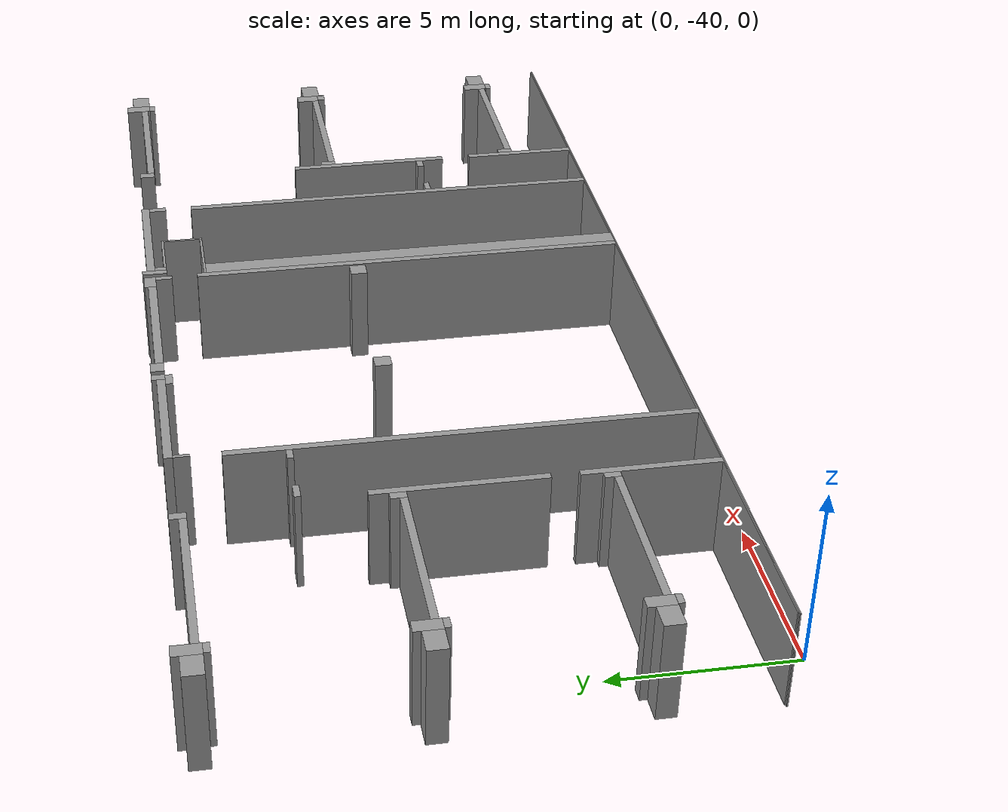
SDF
<sdf version="1.4">
 <model name="Bauman">
  <static>1</static>
  <link name="Wall_69">
   <collision name="Wall_69_Collision">
    <geometry><box><size>0.38830 0.77660 3.00000</size></box></geometry>
    <pose>0.97075 -25.20420 0 0 0 0.00000</pose>
   </collision>
   <visual name="Wall_69_Visual">
    <geometry><box><size>0.38830 0.77660 3.00000</size></box></geometry>
    <material>
     <script><uri>file://media/materials/scripts/gazebo.material</uri><name>Gazebo/Grey</name></script>
    </material>
    <pose>0.97075 -25.20420 0 0 0 0.00000</pose>
   </visual>
  </link>
  <link name="Wall_70">
   <collision name="Wall_70_Collision">
    <geometry><box><size>0.38830 0.77660 3.00000</size></box></geometry>
    <pose>29.74025 -25.27480 0 0 0 0.00000</pose>
   </collision>
   <visual name="Wall_70_Visual">
    <geometry><box><size>0.38830 0.77660 3.00000</size></box></geometry>
    <material>
     <script><uri>file://media/materials/scripts/gazebo.material</uri><name>Gazebo/Grey</name></script>
    </material>
    <pose>29.74025 -25.27480 0 0 0 0.00000</pose>
   </visual>
  </link>
  <link name="Wall_71">
   <collision name="Wall_71_Collision">
    <geometry><box><size>0.24710 0.38830 3.00000</size></box></geometry>
    <pose>12.47855 -25.11595 0 0 0 0.00000</pose>
   </collision>
   <visual name="Wall_71_Visual">
    <geometry><box><size>0.24710 0.38830 3.00000</size></box></geometry>
    <material>
     <script><uri>file://media/materials/scripts/gazebo.material</uri><name>Gazebo/Grey</name></script>
    </material>
    <pose>12.47855 -25.11595 0 0 0 0.00000</pose>
   </visual>
  </link>
  <link name="Wall_72">
   <collision name="Wall_72_Collision">
    <geometry><box><size>0.42360 0.38830 3.00000</size></box></geometry>
    <pose>12.99040 -25.11595 0 0 0 0.00000</pose>
   </collision>
   <visual name="Wall_72_Visual">
    <geometry><box><size>0.42360 0.38830 3.00000</size></box></geometry>
    <material>
     <script><uri>file://media/materials/scripts/gazebo.material</uri><name>Gazebo/Grey</name></script>
    </material>
    <pose>12.99040 -25.11595 0 0 0 0.00000</pose>
   </visual>
  </link>
  <link name="Wall_73">
   <collision name="Wall_73_Collision">
    <geometry><box><size>0.21180 0.74130 3.00000</size></box></geometry>
    <pose>18.28540 -25.29245 0 0 0 0.00000</pose>
   </collision>
   <visual name="Wall_73_Visual">
    <geometry><box><size>0.21180 0.74130 3.00000</size></box></geometry>
    <material>
     <script><uri>file://media/materials/scripts/gazebo.material</uri><name>Gazebo/Grey</name></script>
    </material>
    <pose>18.28540 -25.29245 0 0 0 0.00000</pose>
   </visual>
  </link>
  <link name="Wall_74">
   <collision name="Wall_74_Collision">
    <geometry><box><size>0.56480 0.35300 3.00000</size></box></geometry>
    <pose>17.72060 -25.13360 0 0 0 0.00000</pose>
   </collision>
   <visual name="Wall_74_Visual">
    <geometry><box><size>0.56480 0.35300 3.00000</size></box></geometry>
    <material>
     <script><uri>file://media/materials/scripts/gazebo.material</uri><name>Gazebo/Grey</name></script>
    </material>
    <pose>17.72060 -25.13360 0 0 0 0.00000</pose>
   </visual>
  </link>
  <link name="Wall_75">
   <collision name="Wall_75_Collision">
    <geometry><box><size>0.70600 0.56480 3.00000</size></box></geometry>
    <pose>0.42360 -25.31010 0 0 0 0.00000</pose>
   </collision>
   <visual name="Wall_75_Visual">
    <geometry><box><size>0.70600 0.56480 3.00000</size></box></geometry>
    <material>
     <script><uri>file://media/materials/scripts/gazebo.material</uri><name>Gazebo/Grey</name></script>
    </material>
    <pose>0.42360 -25.31010 0 0 0 0.00000</pose>
   </visual>
  </link>
  <link name="Wall_76">
   <collision name="Wall_76_Collision">
    <geometry><box><size>0.24710 0.45890 3.00000</size></box></geometry>
    <pose>6.05395 -25.29245 0 0 0 0.00000</pose>
   </collision>
   <visual name="Wall_76_Visual">
    <geometry><box><size>0.24710 0.45890 3.00000</size></box></geometry>
    <material>
     <script><uri>file://media/materials/scripts/gazebo.material</uri><name>Gazebo/Grey</name></script>
    </material>
    <pose>6.05395 -25.29245 0 0 0 0.00000</pose>
   </visual>
  </link>
  <link name="Wall_77">
   <collision name="Wall_77_Collision">
    <geometry><box><size>3.77710 0.24710 3.00000</size></box></geometry>
    <pose>10.46645 -25.18655 0 0 0 0.00000</pose>
   </collision>
   <visual name="Wall_77_Visual">
    <geometry><box><size>3.77710 0.24710 3.00000</size></box></geometry>
    <material>
     <script><uri>file://media/materials/scripts/gazebo.material</uri><name>Gazebo/Grey</name></script>
    </material>
    <pose>10.46645 -25.18655 0 0 0 0.00000</pose>
   </visual>
  </link>
  <link name="Wall_78">
   <collision name="Wall_78_Collision">
    <geometry><box><size>4.23600 0.24710 3.00000</size></box></geometry>
    <pose>15.32020 -25.18655 0 0 0 0.00000</pose>
   </collision>
   <visual name="Wall_78_Visual">
    <geometry><box><size>4.23600 0.24710 3.00000</size></box></geometry>
    <material>
     <script><uri>file://media/materials/scripts/gazebo.material</uri><name>Gazebo/Grey</name></script>
    </material>
    <pose>15.32020 -25.18655 0 0 0 0.00000</pose>
   </visual>
  </link>
  <link name="Wall_79">
   <collision name="Wall_79_Collision">
    <geometry><box><size>3.95360 0.24710 3.00000</size></box></geometry>
    <pose>20.36810 -25.18655 0 0 0 0.00000</pose>
   </collision>
   <visual name="Wall_79_Visual">
    <geometry><box><size>3.95360 0.24710 3.00000</size></box></geometry>
    <material>
     <script><uri>file://media/materials/scripts/gazebo.material</uri><name>Gazebo/Grey</name></script>
    </material>
    <pose>20.36810 -25.18655 0 0 0 0.00000</pose>
   </visual>
  </link>
  <link name="Wall_80">
   <collision name="Wall_80_Collision">
    <geometry><box><size>0.70600 0.56480 3.00000</size></box></geometry>
    <pose>30.28740 -25.38070 0 0 0 0.00000</pose>
   </collision>
   <visual name="Wall_80_Visual">
    <geometry><box><size>0.70600 0.56480 3.00000</size></box></geometry>
    <material>
     <script><uri>file://media/materials/scripts/gazebo.material</uri><name>Gazebo/Grey</name></script>
    </material>
    <pose>30.28740 -25.38070 0 0 0 0.00000</pose>
   </visual>
  </link>
  <link name="Wall_81">
   <collision name="Wall_81_Collision">
    <geometry><box><size>0.28240 0.45890 3.00000</size></box></geometry>
    <pose>24.67470 -25.36305 0 0 0 0.00000</pose>
   </collision>
   <visual name="Wall_81_Visual">
    <geometry><box><size>0.28240 0.45890 3.00000</size></box></geometry>
    <material>
     <script><uri>file://media/materials/scripts/gazebo.material</uri><name>Gazebo/Grey</name></script>
    </material>
    <pose>24.67470 -25.36305 0 0 0 0.00000</pose>
   </visual>
  </link>
  <link name="Wall_82">
   <collision name="Wall_82_Collision">
    <geometry><box><size>4.76550 0.21180 3.00000</size></box></geometry>
    <pose>3.54765 -25.41600 0 0 0 0.00000</pose>
   </collision>
   <visual name="Wall_82_Visual">
    <geometry><box><size>4.76550 0.21180 3.00000</size></box></geometry>
    <material>
     <script><uri>file://media/materials/scripts/gazebo.material</uri><name>Gazebo/Grey</name></script>
    </material>
    <pose>3.54765 -25.41600 0 0 0 0.00000</pose>
   </visual>
  </link>
  <link name="Wall_83">
   <collision name="Wall_83_Collision">
    <geometry><box><size>0.10590 0.45890 3.00000</size></box></geometry>
    <pose>8.63085 -25.53955 0 0 0 0.00000</pose>
   </collision>
   <visual name="Wall_83_Visual">
    <geometry><box><size>0.10590 0.45890 3.00000</size></box></geometry>
    <material>
     <script><uri>file://media/materials/scripts/gazebo.material</uri><name>Gazebo/Grey</name></script>
    </material>
    <pose>8.63085 -25.53955 0 0 0 0.00000</pose>
   </visual>
  </link>
  <link name="Wall_84">
   <collision name="Wall_84_Collision">
    <geometry><box><size>0.45890 0.21180 3.00000</size></box></geometry>
    <pose>12.33735 -25.41600 0 0 0 0.00000</pose>
   </collision>
   <visual name="Wall_84_Visual">
    <geometry><box><size>0.45890 0.21180 3.00000</size></box></geometry>
    <material>
     <script><uri>file://media/materials/scripts/gazebo.material</uri><name>Gazebo/Grey</name></script>
    </material>
    <pose>12.33735 -25.41600 0 0 0 0.00000</pose>
   </visual>
  </link>
  <link name="Wall_85">
   <collision name="Wall_85_Collision">
    <geometry><box><size>0.17650 0.49420 3.00000</size></box></geometry>
    <pose>17.91475 -25.55720 0 0 0 0.00000</pose>
   </collision>
   <visual name="Wall_85_Visual">
    <geometry><box><size>0.17650 0.49420 3.00000</size></box></geometry>
    <material>
     <script><uri>file://media/materials/scripts/gazebo.material</uri><name>Gazebo/Grey</name></script>
    </material>
    <pose>17.91475 -25.55720 0 0 0 0.00000</pose>
   </visual>
  </link>
  <link name="Wall_86">
   <collision name="Wall_86_Collision">
    <geometry><box><size>0.17650 0.35300 3.00000</size></box></geometry>
    <pose>18.47955 -25.48660 0 0 0 0.00000</pose>
   </collision>
   <visual name="Wall_86_Visual">
    <geometry><box><size>0.17650 0.35300 3.00000</size></box></geometry>
    <material>
     <script><uri>file://media/materials/scripts/gazebo.material</uri><name>Gazebo/Grey</name></script>
    </material>
    <pose>18.47955 -25.48660 0 0 0 0.00000</pose>
   </visual>
  </link>
  <link name="Wall_87">
   <collision name="Wall_87_Collision">
    <geometry><box><size>0.21180 0.52950 3.00000</size></box></geometry>
    <pose>22.23900 -25.57485 0 0 0 0.00000</pose>
   </collision>
   <visual name="Wall_87_Visual">
    <geometry><box><size>0.21180 0.52950 3.00000</size></box></geometry>
    <material>
     <script><uri>file://media/materials/scripts/gazebo.material</uri><name>Gazebo/Grey</name></script>
    </material>
    <pose>22.23900 -25.57485 0 0 0 0.00000</pose>
   </visual>
  </link>
  <link name="Wall_88">
   <collision name="Wall_88_Collision">
    <geometry><box><size>4.73020 0.21180 3.00000</size></box></geometry>
    <pose>27.18100 -25.48660 0 0 0 0.00000</pose>
   </collision>
   <visual name="Wall_88_Visual">
    <geometry><box><size>4.73020 0.21180 3.00000</size></box></geometry>
    <material>
     <script><uri>file://media/materials/scripts/gazebo.material</uri><name>Gazebo/Grey</name></script>
    </material>
    <pose>27.18100 -25.48660 0 0 0 0.00000</pose>
   </visual>
  </link>
  <link name="Wall_89">
   <collision name="Wall_89_Collision">
    <geometry><box><size>0.35300 0.17650 3.00000</size></box></geometry>
    <pose>0.98840 -25.68075 0 0 0 0.00000</pose>
   </collision>
   <visual name="Wall_89_Visual">
    <geometry><box><size>0.35300 0.17650 3.00000</size></box></geometry>
    <material>
     <script><uri>file://media/materials/scripts/gazebo.material</uri><name>Gazebo/Grey</name></script>
    </material>
    <pose>0.98840 -25.68075 0 0 0 0.00000</pose>
   </visual>
  </link>
  <link name="Wall_90">
   <collision name="Wall_90_Collision">
    <geometry><box><size>1.62380 0.07060 3.00000</size></box></geometry>
    <pose>19.37970 -25.62780 0 0 0 0.00000</pose>
   </collision>
   <visual name="Wall_90_Visual">
    <geometry><box><size>1.62380 0.07060 3.00000</size></box></geometry>
    <material>
     <script><uri>file://media/materials/scripts/gazebo.material</uri><name>Gazebo/Grey</name></script>
    </material>
    <pose>19.37970 -25.62780 0 0 0 0.00000</pose>
   </visual>
  </link>
  <link name="Wall_91">
   <collision name="Wall_91_Collision">
    <geometry><box><size>0.03530 0.14120 3.00000</size></box></geometry>
    <pose>18.02065 -25.73370 0 0 0 0.00000</pose>
   </collision>
   <visual name="Wall_91_Visual">
    <geometry><box><size>0.03530 0.14120 3.00000</size></box></geometry>
    <material>
     <script><uri>file://media/materials/scripts/gazebo.material</uri><name>Gazebo/Grey</name></script>
    </material>
    <pose>18.02065 -25.73370 0 0 0 0.00000</pose>
   </visual>
  </link>
  <link name="Wall_92">
   <collision name="Wall_92_Collision">
    <geometry><box><size>0.07060 1.20020 3.00000</size></box></geometry>
    <pose>20.15630 -26.26320 0 0 0 0.00000</pose>
   </collision>
   <visual name="Wall_92_Visual">
    <geometry><box><size>0.07060 1.20020 3.00000</size></box></geometry>
    <material>
     <script><uri>file://media/materials/scripts/gazebo.material</uri><name>Gazebo/Grey</name></script>
    </material>
    <pose>20.15630 -26.26320 0 0 0 0.00000</pose>
   </visual>
  </link>
  <link name="Wall_93">
   <collision name="Wall_93_Collision">
    <geometry><box><size>0.35300 0.17650 3.00000</size></box></geometry>
    <pose>29.72260 -25.75135 0 0 0 0.00000</pose>
   </collision>
   <visual name="Wall_93_Visual">
    <geometry><box><size>0.35300 0.17650 3.00000</size></box></geometry>
    <material>
     <script><uri>file://media/materials/scripts/gazebo.material</uri><name>Gazebo/Grey</name></script>
    </material>
    <pose>29.72260 -25.75135 0 0 0 0.00000</pose>
   </visual>
  </link>
  <link name="Wall_94">
   <collision name="Wall_94_Collision">
    <geometry><box><size>0.21180 13.13160 3.00000</size></box></geometry>
    <pose>17.93240 -33.14670 0 0 0 0.00000</pose>
   </collision>
   <visual name="Wall_94_Visual">
    <geometry><box><size>0.21180 13.13160 3.00000</size></box></geometry>
    <material>
     <script><uri>file://media/materials/scripts/gazebo.material</uri><name>Gazebo/Grey</name></script>
    </material>
    <pose>17.93240 -33.14670 0 0 0 0.00000</pose>
   </visual>
  </link>
  <link name="Wall_95">
   <collision name="Wall_95_Collision">
    <geometry><box><size>0.21180 13.09630 3.00000</size></box></geometry>
    <pose>8.57790 -33.16435 0 0 0 0.00000</pose>
   </collision>
   <visual name="Wall_95_Visual">
    <geometry><box><size>0.21180 13.09630 3.00000</size></box></geometry>
    <material>
     <script><uri>file://media/materials/scripts/gazebo.material</uri><name>Gazebo/Grey</name></script>
    </material>
    <pose>8.57790 -33.16435 0 0 0 0.00000</pose>
   </visual>
  </link>
  <link name="Wall_96">
   <collision name="Wall_96_Collision">
    <geometry><box><size>0.21180 13.06100 3.00000</size></box></geometry>
    <pose>22.20370 -33.18200 0 0 0 0.00000</pose>
   </collision>
   <visual name="Wall_96_Visual">
    <geometry><box><size>0.21180 13.06100 3.00000</size></box></geometry>
    <material>
     <script><uri>file://media/materials/scripts/gazebo.material</uri><name>Gazebo/Grey</name></script>
    </material>
    <pose>22.20370 -33.18200 0 0 0 0.00000</pose>
   </visual>
  </link>
  <link name="Wall_97">
   <collision name="Wall_97_Collision">
    <geometry><box><size>2.08270 0.07060 3.00000</size></box></geometry>
    <pose>19.07965 -26.82800 0 0 0 0.00000</pose>
   </collision>
   <visual name="Wall_97_Visual">
    <geometry><box><size>2.08270 0.07060 3.00000</size></box></geometry>
    <material>
     <script><uri>file://media/materials/scripts/gazebo.material</uri><name>Gazebo/Grey</name></script>
    </material>
    <pose>19.07965 -26.82800 0 0 0 0.00000</pose>
   </visual>
  </link>
  <link name="Wall_98">
   <collision name="Wall_98_Collision">
    <geometry><box><size>0.52950 12.84920 3.00000</size></box></geometry>
    <pose>18.30305 -33.28790 0 0 0 0.00000</pose>
   </collision>
   <visual name="Wall_98_Visual">
    <geometry><box><size>0.52950 12.84920 3.00000</size></box></geometry>
    <material>
     <script><uri>file://media/materials/scripts/gazebo.material</uri><name>Gazebo/Grey</name></script>
    </material>
    <pose>18.30305 -33.28790 0 0 0 0.00000</pose>
   </visual>
  </link>
  <link name="Wall_99">
   <collision name="Wall_99_Collision">
    <geometry><box><size>0.49420 0.17650 3.00000</size></box></geometry>
    <pose>6.63640 -28.39885 0 0 0 0.00000</pose>
   </collision>
   <visual name="Wall_99_Visual">
    <geometry><box><size>0.49420 0.17650 3.00000</size></box></geometry>
    <material>
     <script><uri>file://media/materials/scripts/gazebo.material</uri><name>Gazebo/Grey</name></script>
    </material>
    <pose>6.63640 -28.39885 0 0 0 0.00000</pose>
   </visual>
  </link>
  <link name="Wall_100">
   <collision name="Wall_100_Collision">
    <geometry><box><size>0.38830 0.17650 3.00000</size></box></geometry>
    <pose>8.27785 -28.39885 0 0 0 0.00000</pose>
   </collision>
   <visual name="Wall_100_Visual">
    <geometry><box><size>0.38830 0.17650 3.00000</size></box></geometry>
    <material>
     <script><uri>file://media/materials/scripts/gazebo.material</uri><name>Gazebo/Grey</name></script>
    </material>
    <pose>8.27785 -28.39885 0 0 0 0.00000</pose>
   </visual>
  </link>
  <link name="Wall_101">
   <collision name="Wall_101_Collision">
    <geometry><box><size>0.21180 4.83610 3.00000</size></box></geometry>
    <pose>6.28340 -32.63485 0 0 0 0.00000</pose>
   </collision>
   <visual name="Wall_101_Visual">
    <geometry><box><size>0.21180 4.83610 3.00000</size></box></geometry>
    <material>
     <script><uri>file://media/materials/scripts/gazebo.material</uri><name>Gazebo/Grey</name></script>
    </material>
    <pose>6.28340 -32.63485 0 0 0 0.00000</pose>
   </visual>
  </link>
  <link name="Wall_102">
   <collision name="Wall_102_Collision">
    <geometry><box><size>0.21180 5.01260 3.00000</size></box></geometry>
    <pose>24.42760 -32.79370 0 0 0 0.00000</pose>
   </collision>
   <visual name="Wall_102_Visual">
    <geometry><box><size>0.21180 5.01260 3.00000</size></box></geometry>
    <material>
     <script><uri>file://media/materials/scripts/gazebo.material</uri><name>Gazebo/Grey</name></script>
    </material>
    <pose>24.42760 -32.79370 0 0 0 0.00000</pose>
   </visual>
  </link>
  <link name="Wall_103">
   <collision name="Wall_103_Collision">
    <geometry><box><size>0.38830 0.77660 3.00000</size></box></geometry>
    <pose>0.97075 -30.88750 0 0 0 0.00000</pose>
   </collision>
   <visual name="Wall_103_Visual">
    <geometry><box><size>0.38830 0.77660 3.00000</size></box></geometry>
    <material>
     <script><uri>file://media/materials/scripts/gazebo.material</uri><name>Gazebo/Grey</name></script>
    </material>
    <pose>0.97075 -30.88750 0 0 0 0.00000</pose>
   </visual>
  </link>
  <link name="Wall_104">
   <collision name="Wall_104_Collision">
    <geometry><box><size>0.70600 0.56480 3.00000</size></box></geometry>
    <pose>0.42360 -30.99340 0 0 0 0.00000</pose>
   </collision>
   <visual name="Wall_104_Visual">
    <geometry><box><size>0.70600 0.56480 3.00000</size></box></geometry>
    <material>
     <script><uri>file://media/materials/scripts/gazebo.material</uri><name>Gazebo/Grey</name></script>
    </material>
    <pose>0.42360 -30.99340 0 0 0 0.00000</pose>
   </visual>
  </link>
  <link name="Wall_105">
   <collision name="Wall_105_Collision">
    <geometry><box><size>0.24710 0.45890 3.00000</size></box></geometry>
    <pose>6.05395 -30.97575 0 0 0 0.00000</pose>
   </collision>
   <visual name="Wall_105_Visual">
    <geometry><box><size>0.24710 0.45890 3.00000</size></box></geometry>
    <material>
     <script><uri>file://media/materials/scripts/gazebo.material</uri><name>Gazebo/Grey</name></script>
    </material>
    <pose>6.05395 -30.97575 0 0 0 0.00000</pose>
   </visual>
  </link>
  <link name="Wall_106">
   <collision name="Wall_106_Collision">
    <geometry><box><size>0.38830 0.70600 3.00000</size></box></geometry>
    <pose>29.66965 -31.31110 0 0 0 0.00000</pose>
   </collision>
   <visual name="Wall_106_Visual">
    <geometry><box><size>0.38830 0.70600 3.00000</size></box></geometry>
    <material>
     <script><uri>file://media/materials/scripts/gazebo.material</uri><name>Gazebo/Grey</name></script>
    </material>
    <pose>29.66965 -31.31110 0 0 0 0.00000</pose>
   </visual>
  </link>
  <link name="Wall_107">
   <collision name="Wall_107_Collision">
    <geometry><box><size>4.76550 0.21180 3.00000</size></box></geometry>
    <pose>3.54765 -31.09930 0 0 0 0.00000</pose>
   </collision>
   <visual name="Wall_107_Visual">
    <geometry><box><size>4.76550 0.21180 3.00000</size></box></geometry>
    <material>
     <script><uri>file://media/materials/scripts/gazebo.material</uri><name>Gazebo/Grey</name></script>
    </material>
    <pose>3.54765 -31.09930 0 0 0 0.00000</pose>
   </visual>
  </link>
  <link name="Wall_108">
   <collision name="Wall_108_Collision">
    <geometry><box><size>0.77660 0.56480 3.00000</size></box></geometry>
    <pose>30.25210 -31.45230 0 0 0 0.00000</pose>
   </collision>
   <visual name="Wall_108_Visual">
    <geometry><box><size>0.77660 0.56480 3.00000</size></box></geometry>
    <material>
     <script><uri>file://media/materials/scripts/gazebo.material</uri><name>Gazebo/Grey</name></script>
    </material>
    <pose>30.25210 -31.45230 0 0 0 0.00000</pose>
   </visual>
  </link>
  <link name="Wall_109">
   <collision name="Wall_109_Collision">
    <geometry><box><size>0.21180 0.45890 3.00000</size></box></geometry>
    <pose>24.63940 -31.43465 0 0 0 0.00000</pose>
   </collision>
   <visual name="Wall_109_Visual">
    <geometry><box><size>0.21180 0.45890 3.00000</size></box></geometry>
    <material>
     <script><uri>file://media/materials/scripts/gazebo.material</uri><name>Gazebo/Grey</name></script>
    </material>
    <pose>24.63940 -31.43465 0 0 0 0.00000</pose>
   </visual>
  </link>
  <link name="Wall_110">
   <collision name="Wall_110_Collision">
    <geometry><box><size>0.45890 0.49420 3.00000</size></box></geometry>
    <pose>12.33735 -31.48760 0 0 0 0.00000</pose>
   </collision>
   <visual name="Wall_110_Visual">
    <geometry><box><size>0.45890 0.49420 3.00000</size></box></geometry>
    <material>
     <script><uri>file://media/materials/scripts/gazebo.material</uri><name>Gazebo/Grey</name></script>
    </material>
    <pose>12.33735 -31.48760 0 0 0 0.00000</pose>
   </visual>
  </link>
  <link name="Wall_111">
   <collision name="Wall_111_Collision">
    <geometry><box><size>0.49420 0.49420 3.00000</size></box></geometry>
    <pose>17.50880 -31.48760 0 0 0 0.00000</pose>
   </collision>
   <visual name="Wall_111_Visual">
    <geometry><box><size>0.49420 0.49420 3.00000</size></box></geometry>
    <material>
     <script><uri>file://media/materials/scripts/gazebo.material</uri><name>Gazebo/Grey</name></script>
    </material>
    <pose>17.50880 -31.48760 0 0 0 0.00000</pose>
   </visual>
  </link>
  <link name="Wall_112">
   <collision name="Wall_112_Collision">
    <geometry><box><size>0.35300 0.17650 3.00000</size></box></geometry>
    <pose>0.98840 -31.36405 0 0 0 0.00000</pose>
   </collision>
   <visual name="Wall_112_Visual">
    <geometry><box><size>0.35300 0.17650 3.00000</size></box></geometry>
    <material>
     <script><uri>file://media/materials/scripts/gazebo.material</uri><name>Gazebo/Grey</name></script>
    </material>
    <pose>0.98840 -31.36405 0 0 0 0.00000</pose>
   </visual>
  </link>
  <link name="Wall_113">
   <collision name="Wall_113_Collision">
    <geometry><box><size>4.73020 0.21180 3.00000</size></box></geometry>
    <pose>27.11040 -31.55820 0 0 0 0.00000</pose>
   </collision>
   <visual name="Wall_113_Visual">
    <geometry><box><size>4.73020 0.21180 3.00000</size></box></geometry>
    <material>
     <script><uri>file://media/materials/scripts/gazebo.material</uri><name>Gazebo/Grey</name></script>
    </material>
    <pose>27.11040 -31.55820 0 0 0 0.00000</pose>
   </visual>
  </link>
  <link name="Wall_114">
   <collision name="Wall_114_Collision">
    <geometry><box><size>0.31770 0.24710 3.00000</size></box></geometry>
    <pose>29.70495 -31.78765 0 0 0 0.00000</pose>
   </collision>
   <visual name="Wall_114_Visual">
    <geometry><box><size>0.31770 0.24710 3.00000</size></box></geometry>
    <material>
     <script><uri>file://media/materials/scripts/gazebo.material</uri><name>Gazebo/Grey</name></script>
    </material>
    <pose>29.70495 -31.78765 0 0 0 0.00000</pose>
   </visual>
  </link>
  <link name="Wall_115">
   <collision name="Wall_115_Collision">
    <geometry><box><size>0.03530 0.17650 3.00000</size></box></geometry>
    <pose>29.88145 -31.82295 0 0 0 0.00000</pose>
   </collision>
   <visual name="Wall_115_Visual">
    <geometry><box><size>0.03530 0.17650 3.00000</size></box></geometry>
    <material>
     <script><uri>file://media/materials/scripts/gazebo.material</uri><name>Gazebo/Grey</name></script>
    </material>
    <pose>29.88145 -31.82295 0 0 0 0.00000</pose>
   </visual>
  </link>
  <link name="Wall_116">
   <collision name="Wall_116_Collision">
    <geometry><box><size>0.45890 0.17650 3.00000</size></box></geometry>
    <pose>22.53905 -34.47045 0 0 0 0.00000</pose>
   </collision>
   <visual name="Wall_116_Visual">
    <geometry><box><size>0.45890 0.17650 3.00000</size></box></geometry>
    <material>
     <script><uri>file://media/materials/scripts/gazebo.material</uri><name>Gazebo/Grey</name></script>
    </material>
    <pose>22.53905 -34.47045 0 0 0 0.00000</pose>
   </visual>
  </link>
  <link name="Wall_117">
   <collision name="Wall_117_Collision">
    <geometry><box><size>0.38830 0.21180 3.00000</size></box></geometry>
    <pose>24.12755 -34.48810 0 0 0 0.00000</pose>
   </collision>
   <visual name="Wall_117_Visual">
    <geometry><box><size>0.38830 0.21180 3.00000</size></box></geometry>
    <material>
     <script><uri>file://media/materials/scripts/gazebo.material</uri><name>Gazebo/Grey</name></script>
    </material>
    <pose>24.12755 -34.48810 0 0 0 0.00000</pose>
   </visual>
  </link>
  <link name="Wall_118">
   <collision name="Wall_118_Collision">
    <geometry><box><size>0.21180 3.88300 3.00000</size></box></geometry>
    <pose>6.28340 -37.77100 0 0 0 0.00000</pose>
   </collision>
   <visual name="Wall_118_Visual">
    <geometry><box><size>0.21180 3.88300 3.00000</size></box></geometry>
    <material>
     <script><uri>file://media/materials/scripts/gazebo.material</uri><name>Gazebo/Grey</name></script>
    </material>
    <pose>6.28340 -37.77100 0 0 0 0.00000</pose>
   </visual>
  </link>
  <link name="Wall_119">
   <collision name="Wall_119_Collision">
    <geometry><box><size>0.38830 0.77660 3.00000</size></box></geometry>
    <pose>0.97075 -36.57080 0 0 0 0.00000</pose>
   </collision>
   <visual name="Wall_119_Visual">
    <geometry><box><size>0.38830 0.77660 3.00000</size></box></geometry>
    <material>
     <script><uri>file://media/materials/scripts/gazebo.material</uri><name>Gazebo/Grey</name></script>
    </material>
    <pose>0.97075 -36.57080 0 0 0 0.00000</pose>
   </visual>
  </link>
  <link name="Wall_120">
   <collision name="Wall_120_Collision">
    <geometry><box><size>0.21180 3.49470 3.00000</size></box></geometry>
    <pose>24.42760 -37.96515 0 0 0 0.00000</pose>
   </collision>
   <visual name="Wall_120_Visual">
    <geometry><box><size>0.21180 3.49470 3.00000</size></box></geometry>
    <material>
     <script><uri>file://media/materials/scripts/gazebo.material</uri><name>Gazebo/Grey</name></script>
    </material>
    <pose>24.42760 -37.96515 0 0 0 0.00000</pose>
   </visual>
  </link>
  <link name="Wall_121">
   <collision name="Wall_121_Collision">
    <geometry><box><size>0.70600 0.56480 3.00000</size></box></geometry>
    <pose>0.42360 -36.67670 0 0 0 0.00000</pose>
   </collision>
   <visual name="Wall_121_Visual">
    <geometry><box><size>0.70600 0.56480 3.00000</size></box></geometry>
    <material>
     <script><uri>file://media/materials/scripts/gazebo.material</uri><name>Gazebo/Grey</name></script>
    </material>
    <pose>0.42360 -36.67670 0 0 0 0.00000</pose>
   </visual>
  </link>
  <link name="Wall_122">
   <collision name="Wall_122_Collision">
    <geometry><box><size>0.21180 0.45890 3.00000</size></box></geometry>
    <pose>6.07160 -36.65905 0 0 0 0.00000</pose>
   </collision>
   <visual name="Wall_122_Visual">
    <geometry><box><size>0.21180 0.45890 3.00000</size></box></geometry>
    <material>
     <script><uri>file://media/materials/scripts/gazebo.material</uri><name>Gazebo/Grey</name></script>
    </material>
    <pose>6.07160 -36.65905 0 0 0 0.00000</pose>
   </visual>
  </link>
  <link name="Wall_123">
   <collision name="Wall_123_Collision">
    <geometry><box><size>4.80080 0.21180 3.00000</size></box></geometry>
    <pose>3.56530 -36.78260 0 0 0 0.00000</pose>
   </collision>
   <visual name="Wall_123_Visual">
    <geometry><box><size>4.80080 0.21180 3.00000</size></box></geometry>
    <material>
     <script><uri>file://media/materials/scripts/gazebo.material</uri><name>Gazebo/Grey</name></script>
    </material>
    <pose>3.56530 -36.78260 0 0 0 0.00000</pose>
   </visual>
  </link>
  <link name="Wall_124">
   <collision name="Wall_124_Collision">
    <geometry><box><size>0.35300 0.17650 3.00000</size></box></geometry>
    <pose>0.98840 -37.04735 0 0 0 0.00000</pose>
   </collision>
   <visual name="Wall_124_Visual">
    <geometry><box><size>0.35300 0.17650 3.00000</size></box></geometry>
    <material>
     <script><uri>file://media/materials/scripts/gazebo.material</uri><name>Gazebo/Grey</name></script>
    </material>
    <pose>0.98840 -37.04735 0 0 0 0.00000</pose>
   </visual>
  </link>
  <link name="Wall_125">
   <collision name="Wall_125_Collision">
    <geometry><box><size>0.38830 0.77660 3.00000</size></box></geometry>
    <pose>29.74025 -37.41800 0 0 0 0.00000</pose>
   </collision>
   <visual name="Wall_125_Visual">
    <geometry><box><size>0.38830 0.77660 3.00000</size></box></geometry>
    <material>
     <script><uri>file://media/materials/scripts/gazebo.material</uri><name>Gazebo/Grey</name></script>
    </material>
    <pose>29.74025 -37.41800 0 0 0 0.00000</pose>
   </visual>
  </link>
  <link name="Wall_126">
   <collision name="Wall_126_Collision">
    <geometry><box><size>0.70600 0.56480 3.00000</size></box></geometry>
    <pose>30.28740 -37.52390 0 0 0 0.00000</pose>
   </collision>
   <visual name="Wall_126_Visual">
    <geometry><box><size>0.70600 0.56480 3.00000</size></box></geometry>
    <material>
     <script><uri>file://media/materials/scripts/gazebo.material</uri><name>Gazebo/Grey</name></script>
    </material>
    <pose>30.28740 -37.52390 0 0 0 0.00000</pose>
   </visual>
  </link>
  <link name="Wall_127">
   <collision name="Wall_127_Collision">
    <geometry><box><size>0.21180 0.45890 3.00000</size></box></geometry>
    <pose>24.63940 -37.50625 0 0 0 0.00000</pose>
   </collision>
   <visual name="Wall_127_Visual">
    <geometry><box><size>0.21180 0.45890 3.00000</size></box></geometry>
    <material>
     <script><uri>file://media/materials/scripts/gazebo.material</uri><name>Gazebo/Grey</name></script>
    </material>
    <pose>24.63940 -37.50625 0 0 0 0.00000</pose>
   </visual>
  </link>
  <link name="Wall_128">
   <collision name="Wall_128_Collision">
    <geometry><box><size>4.80080 0.21180 3.00000</size></box></geometry>
    <pose>27.14570 -37.62980 0 0 0 0.00000</pose>
   </collision>
   <visual name="Wall_128_Visual">
    <geometry><box><size>4.80080 0.21180 3.00000</size></box></geometry>
    <material>
     <script><uri>file://media/materials/scripts/gazebo.material</uri><name>Gazebo/Grey</name></script>
    </material>
    <pose>27.14570 -37.62980 0 0 0 0.00000</pose>
   </visual>
  </link>
  <link name="Wall_129">
   <collision name="Wall_129_Collision">
    <geometry><box><size>0.35300 0.17650 3.00000</size></box></geometry>
    <pose>29.72260 -37.89455 0 0 0 0.00000</pose>
   </collision>
   <visual name="Wall_129_Visual">
    <geometry><box><size>0.35300 0.17650 3.00000</size></box></geometry>
    <material>
     <script><uri>file://media/materials/scripts/gazebo.material</uri><name>Gazebo/Grey</name></script>
    </material>
    <pose>29.72260 -37.89455 0 0 0 0.00000</pose>
   </visual>
  </link>
  <link name="Wall_130">
   <collision name="Wall_130_Collision">
    <geometry><box><size>6.10690 0.03530 3.00000</size></box></geometry>
    <pose>3.12405 -39.69485 0 0 0 0.00000</pose>
   </collision>
   <visual name="Wall_130_Visual">
    <geometry><box><size>6.10690 0.03530 3.00000</size></box></geometry>
    <material>
     <script><uri>file://media/materials/scripts/gazebo.material</uri><name>Gazebo/Grey</name></script>
    </material>
    <pose>3.12405 -39.69485 0 0 0 0.00000</pose>
   </visual>
  </link>
  <link name="Wall_131">
   <collision name="Wall_131_Collision">
    <geometry><box><size>2.08270 0.03530 3.00000</size></box></geometry>
    <pose>7.43065 -39.69485 0 0 0 0.00000</pose>
   </collision>
   <visual name="Wall_131_Visual">
    <geometry><box><size>2.08270 0.03530 3.00000</size></box></geometry>
    <material>
     <script><uri>file://media/materials/scripts/gazebo.material</uri><name>Gazebo/Grey</name></script>
    </material>
    <pose>7.43065 -39.69485 0 0 0 0.00000</pose>
   </visual>
  </link>
  <link name="Wall_132">
   <collision name="Wall_132_Collision">
    <geometry><box><size>9.14270 0.03530 3.00000</size></box></geometry>
    <pose>13.25515 -39.69485 0 0 0 0.00000</pose>
   </collision>
   <visual name="Wall_132_Visual">
    <geometry><box><size>9.14270 0.03530 3.00000</size></box></geometry>
    <material>
     <script><uri>file://media/materials/scripts/gazebo.material</uri><name>Gazebo/Grey</name></script>
    </material>
    <pose>13.25515 -39.69485 0 0 0 0.00000</pose>
   </visual>
  </link>
  <link name="Wall_133">
   <collision name="Wall_133_Collision">
    <geometry><box><size>3.53000 0.03530 3.00000</size></box></geometry>
    <pose>20.33280 -39.69485 0 0 0 0.00000</pose>
   </collision>
   <visual name="Wall_133_Visual">
    <geometry><box><size>3.53000 0.03530 3.00000</size></box></geometry>
    <material>
     <script><uri>file://media/materials/scripts/gazebo.material</uri><name>Gazebo/Grey</name></script>
    </material>
    <pose>20.33280 -39.69485 0 0 0 0.00000</pose>
   </visual>
  </link>
  <link name="Wall_134">
   <collision name="Wall_134_Collision">
    <geometry><box><size>2.01210 0.03530 3.00000</size></box></geometry>
    <pose>23.31565 -39.69485 0 0 0 0.00000</pose>
   </collision>
   <visual name="Wall_134_Visual">
    <geometry><box><size>2.01210 0.03530 3.00000</size></box></geometry>
    <material>
     <script><uri>file://media/materials/scripts/gazebo.material</uri><name>Gazebo/Grey</name></script>
    </material>
    <pose>23.31565 -39.69485 0 0 0 0.00000</pose>
   </visual>
  </link>
  <link name="Wall_135">
   <collision name="Wall_135_Collision">
    <geometry><box><size>6.10690 0.03530 3.00000</size></box></geometry>
    <pose>27.58695 -39.69485 0 0 0 0.00000</pose>
   </collision>
   <visual name="Wall_135_Visual">
    <geometry><box><size>6.10690 0.03530 3.00000</size></box></geometry>
    <material>
     <script><uri>file://media/materials/scripts/gazebo.material</uri><name>Gazebo/Grey</name></script>
    </material>
    <pose>27.58695 -39.69485 0 0 0 0.00000</pose>
   </visual>
  </link>
  <link name="Wall_136">
   <collision name="Wall_136_Collision">
    <geometry><box><size>30.67570 0.03530 3.00000</size></box></geometry>
    <pose>15.33785 -39.73015 0 0 0 0.00000</pose>
   </collision>
   <visual name="Wall_136_Visual">
    <geometry><box><size>30.67570 0.03530 3.00000</size></box></geometry>
    <material>
     <script><uri>file://media/materials/scripts/gazebo.material</uri><name>Gazebo/Grey</name></script>
    </material>
    <pose>15.33785 -39.73015 0 0 0 0.00000</pose>
   </visual>
  </link>
 </model>
</sdf>
